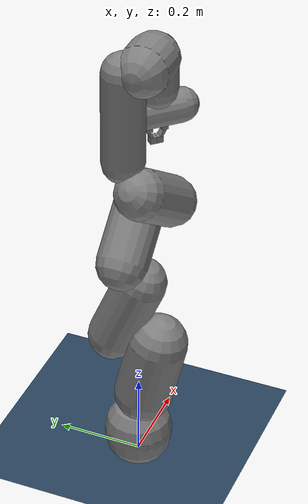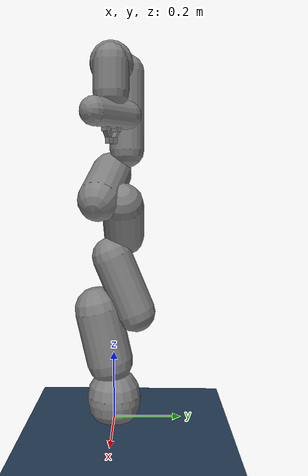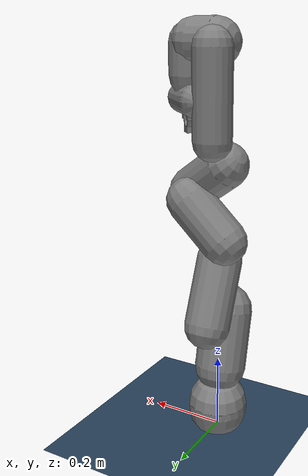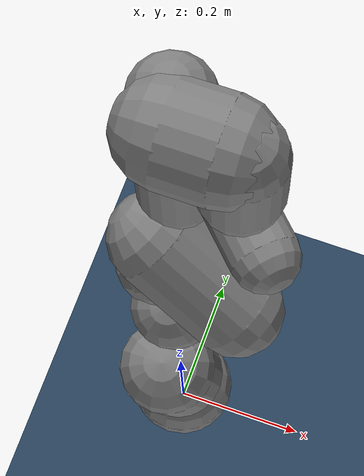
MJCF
<mujoco model="panda scene">
  <include file="panda.xml"/>

  <statistic center="0.3 0 0.4" extent="1"/>

  <visual>
    <headlight diffuse="0.6 0.6 0.6" ambient="0.3 0.3 0.3" specular="0 0 0"/>
    <rgba haze="0.15 0.25 0.35 1"/>
    <global azimuth="120" elevation="-20"/>
  </visual>

  <asset>
    <texture type="skybox" builtin="gradient" rgb1="0.3 0.5 0.7" rgb2="0 0 0" width="512" height="3072"/>
   <texture name="grid" type="2d" builtin="checker" rgb1=".1 .2 .3" rgb2=".2 .3 .4" width="300" height="300" mark="edge" markrgb=".2 .3 .4"/>
    <material name="grid" texture="grid" texrepeat="1 1" texuniform="true" reflectance=".2"/>
  </asset>

  <worldbody>
  <camera name="front" pos="1.4 0 0.6" fovy="58" mode="fixed" euler="0 1.2 1.5708"/>
  <light pos="0 0 1.5" dir="-1 0.2 -1" directional="true" castshadow="true"/>
  <geom name="floor" size="0 0 0.05" type="plane" material="grid"/>
  </worldbody>
</mujoco>

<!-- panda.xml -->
<mujoco model="panda">
  <compiler angle="radian" meshdir="assets" autolimits="true"/>

  <default>
    <default class="panda">
      <material specular="0.5" shininess="0.25"/>
      <joint range="-2.8973 2.8973"/>
      <default class="finger">
        <joint axis="0 1 0" type="slide" range="0 0.04"/>
      </default>

      <default class="collision">
        <geom type="mesh" group="2"/>
          <default class="fingertip_collision_1">
            <geom type="box" size="0.011 0.0075 0.01" pos="0 0.0185 0.011"/>
          </default>
          <default class="fingertip_collision_2">
            <geom type="box" size="0.011 0.0044 0.0019" pos="0 0.0068 0.0022"/>
          </default>
          <default class="fingertip_collision_3">
            <geom type="box" size="0.00875 0.0035 0.01175" pos="0 0.0159 0.02835" quat="1 0.25 0 0"/>
          </default>
          <default class="fingertip_pad_collision_1">
            <geom type="box" size="0.0085 0.004 0.0085" pos="0 0.0055 0.0445"/>
          </default>
          <default class="fingertip_pad_collision_2">
            <geom type="box" size="0.003 0.002 0.003" pos="0.0055 0.002 0.05"/>
          </default>
          <default class="fingertip_pad_collision_3">
            <geom type="box" size="0.003 0.002 0.003" pos="-0.0055 0.002 0.05"/>
          </default>
          <default class="fingertip_pad_collision_4">
            <geom type="box" size="0.003 0.002 0.0035" pos="0.0055 0.002 0.0395"/>
          </default>
        <default class="fingertip_pad_collision_5">
          <geom type="box" size="0.003 0.002 0.0035" pos="-0.0055 0.002 0.0395"/>
        </default>
        <default class="fingertip_pad_collision_6">
          <geom type="box" size="0.00875 0.0076 0.00825" pos="0 0.00758 0.04525"/>
        </default>
      </default>
    </default>
  </default>

  <asset>
    <material class="panda" name="white" rgba="1 1 1 1"/>
    <material class="panda" name="off_white" rgba="0.901961 0.921569 0.929412 1"/>
    <material class="panda" name="black" rgba="0.25 0.25 0.25 1"/>
    <material class="panda" name="green" rgba="0 1 0 1"/>
    <material class="panda" name="light_blue" rgba="0.039216 0.541176 0.780392 1"/>
  </asset>

  <worldbody>
    <body name="link0" childclass="panda">
      <inertial mass="0.629769" pos="0 0 0"
        fullinertia="0.00315 0.00388 0.004285 8.2904e-7 0.00015 8.2299e-6"/>
      <geom name="link0_capsule_collision" type="capsule" class="collision" size="0.08 0.01" pos="0 0 0.06"/>
      <body name="link1" pos="0 0 0.333">
        <inertial mass="4.970684" pos="0.003875 0.002081 -0.04762"
          fullinertia="0.70337 0.70661 0.0091170 -0.00013900 0.0067720 0.019169"/>
        <joint name="joint1" range="-2.8973 2.8973"/>
        <geom name="link1_capsule_collision" type="capsule" class="collision" size="0.07 0.08" pos="0 -0.03 -0.08" quat="0.9 0.1 0 0"/>
        <body name="link2" quat="1 -1 0 0">
          <inertial mass="0.646926" pos="-0.003141 -0.02872 0.003495"
            fullinertia="0.0079620 2.8110e-2 2.5995e-2 -3.925e-3 1.0254e-2 7.04e-4"/>
          <joint name="joint2" range="-1.7628 1.7628"/>
          <geom name="link2_capsule_collision" type="capsule" class="collision" size="0.06 0.09" pos="0 -0.075 0.03" quat="0.6 -0.4 0 0"/>
          <body name="link3" pos="0 -0.316 0" quat="1 1 0 0">
            <joint name="joint3" range="-2.8973 2.8973"/>
            <inertial mass="3.228604" pos="2.7518e-2 3.9252e-2 -6.6502e-2"
              fullinertia="3.7242e-2 3.6155e-2 1.083e-2 -4.761e-3 -1.1396e-2 -1.2805e-2"/>
            <geom name="link3_capsule_collision" type="capsule" class="collision" size="0.06 0.07" pos="0.02 0.03 -0.05" quat="0.7 0 0.3 0"/>
            <body name="link4" pos="0.0825 0 0" quat="1 1 0 0">
              <inertial mass="3.587895" pos="-5.317e-2 1.04419e-1 2.7454e-2"
                fullinertia="2.5853e-2 1.9552e-2 2.8323e-2 7.796e-3 -1.332e-3 8.641e-3"/>
              <joint name="joint4" range="-3.0718 -0.0698"/>
              <geom name="link4_capsule_collision" type="capsule" class="collision" size="0.06 0.07" pos="-0.04 0.05 0.02" quat="1 0 1 -0.7"/>
              <body name="link5" pos="-0.0825 0.384 0" quat="1 -1 0 0">
                <inertial mass="1.225946" pos="-1.1953e-2 4.1065e-2 -3.8437e-2"
                  fullinertia="3.5549e-2 2.9474e-2 8.627e-3 -2.117e-3 -4.037e-3 2.29e-4"/>
                <joint name="joint5" range="-2.8973 2.8973"/>
                <geom name="link5_capsule_collision" type="capsule" class="collision" size="0.05 0.11" pos="0 0.04 -0.12"/>
                <body name="link6" quat="1 1 0 0">
                  <inertial mass="1.666555" pos="6.0149e-2 -1.4117e-2 -1.0517e-2"
                    fullinertia="1.964e-3 4.354e-3 5.433e-3 1.09e-4 -1.158e-3 3.41e-4"/>
                  <joint name="joint6" range="-0.0175 3.7525"/>
                  <geom name="link6_capsule_collision" type="capsule" class="collision" size="0.06 0.03" pos="0.04 0 0" quat="1 0 1 0"/>
                  <body name="link7" pos="0.088 0 0" quat="1 1 0 0">
                    <inertial mass="7.35522e-01" pos="1.0517e-2 -4.252e-3 6.1597e-2"
                      fullinertia="1.2516e-2 1.0027e-2 4.815e-3 -4.28e-4 -1.196e-3 -7.41e-4"/>
                    <joint name="joint7" range="-2.8973 2.8973"/>
                    <geom name="link7_capsule_collision" type="capsule" class="collision" size="0.05 0.04" pos="0 0 0.04"/>
                    <body name="hand" pos="0 0 0.107" quat="0.9238795 0 0 -0.3826834">
                      <inertial mass="0.73" pos="-0.01 0 0.03" diaginertia="0.001 0.0025 0.0017"/>
                      <geom name="hand_capsule_collision" type="capsule" class="collision" size="0.04 0.06" quat="1 1 0 0" pos="0 0 0.03"/>
                      <site name="gripper" pos="0 0 0.1"/>
                      <body name="camera_d405" pos="0.06 0.0 0.072" quat="0.6830127 0.1830127 -0.1830127 -0.6830127">
                        <body name="camera_frame" pos="0 0 0" quat="0 0 0 1">
                          <!-- sensorsize="0.00214 0.00214" focal="0.00193 0.00193" -->
                          <camera name="camera_d405" pos="0 0 -0.013" quat="0 1 0 0" resolution="720 720" fovy="58"/>
                        </body>
                      </body>
                      <body name="left_finger" pos="0 0 0.0584">
                        <inertial mass="0.015" pos="0 0 0" diaginertia="2.375e-6 2.375e-6 7.5e-7"/>
                        <joint name="finger_joint1" class="finger" range="0 0.04"/>
                        <geom name="lf1_collision" class="fingertip_collision_1"/>
                        <geom name="lf2_collision" class="fingertip_collision_2"/>
                        <geom name="lf3_collision" class="fingertip_collision_3"/>
                        <geom name="lfp_collision" class="fingertip_pad_collision_6"/>
                      </body>
                      <body name="right_finger" pos="0 0 0.0584" quat="0 0 0 1">
                        <inertial mass="0.015" pos="0 0 0" diaginertia="2.375e-6 2.375e-6 7.5e-7"/>
                        <joint name="finger_joint2" class="finger" range="0 0.04"/>
                        <geom name="rf1_collision" class="fingertip_collision_1"/>
                        <geom name="rf2_collision" class="fingertip_collision_2"/>
                        <geom name="rf3_collision" class="fingertip_collision_3"/>
                        <geom name="rfp_collision" class="fingertip_pad_collision_6"/>
                      </body>
                    </body>
                  </body>
                </body>
              </body>
            </body>
          </body>
        </body>
      </body>
    </body>
  </worldbody>

  <keyframe>
    <key name="home" qpos="0 0 0 -1.57079 0 1.57079 0.7853 0.02 0.02" ctrl="0 0 0 -1.57079 0 1.57079 -0.7853 128"/>
  </keyframe>

  <tendon>
    <fixed name="split">
      <joint joint="finger_joint1" coef="0.5"/>
      <joint joint="finger_joint2" coef="0.5"/>
    </fixed>
  </tendon>

  <actuator>
    <general class="panda" name="actuator1" joint="joint1" gainprm="4500" biasprm="0 -4500 -450"/>
    <general class="panda" name="actuator2" joint="joint2" gainprm="4500" biasprm="0 -4500 -450"
      ctrlrange="-1.7628 1.7628"/>
    <general class="panda" name="actuator3" joint="joint3" gainprm="3500" biasprm="0 -3500 -350"/>
    <general class="panda" name="actuator4" joint="joint4" gainprm="3500" biasprm="0 -3500 -350"
      ctrlrange="-3.0718 -0.0698"/>
    <general class="panda" name="actuator5" joint="joint5" gainprm="2000" biasprm="0 -2000 -200" forcerange="-12 12"/>
    <general class="panda" name="actuator6" joint="joint6" gainprm="2000" biasprm="0 -2000 -200" forcerange="-12 12"
      ctrlrange="-0.0175 3.7525"/>
    <general class="panda" name="actuator7" joint="joint7" gainprm="2000" biasprm="0 -2000 -200" forcerange="-12 12"/>
    <!-- Remap original ctrlrange (0, 0.04) to (0, 255): 0.04 * 100 / 255 = 0.01568627451 -->
    <general class="panda" name="actuator8" tendon="split" forcerange="-100 100" ctrlrange="0 255"
      gainprm="0.01568627451 0 0" biasprm="0 -100 -10"/>
  </actuator>

  <equality>
    <joint joint1="finger_joint1" joint2="finger_joint2" solimp="0.95 0.99 0.001" solref="0.005 1"/>
  </equality>

  <contact>
    <exclude body1="link0" body2="link1"/>
  </contact>
</mujoco>
